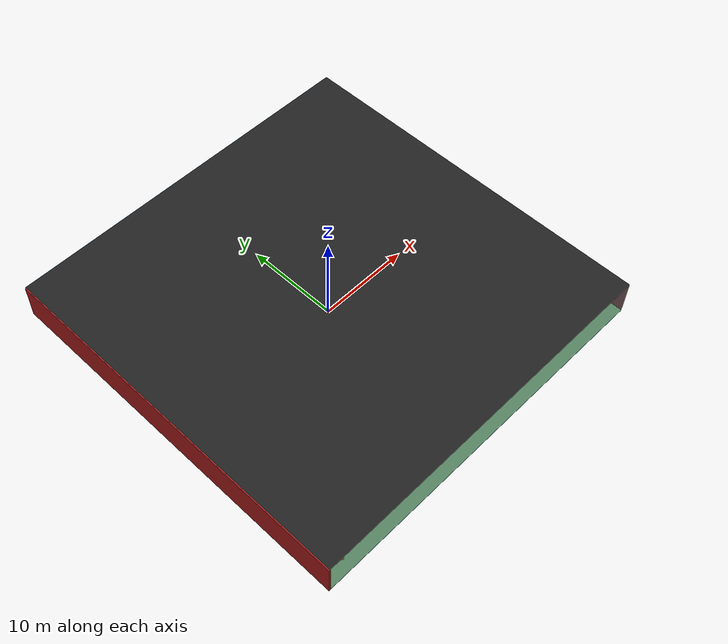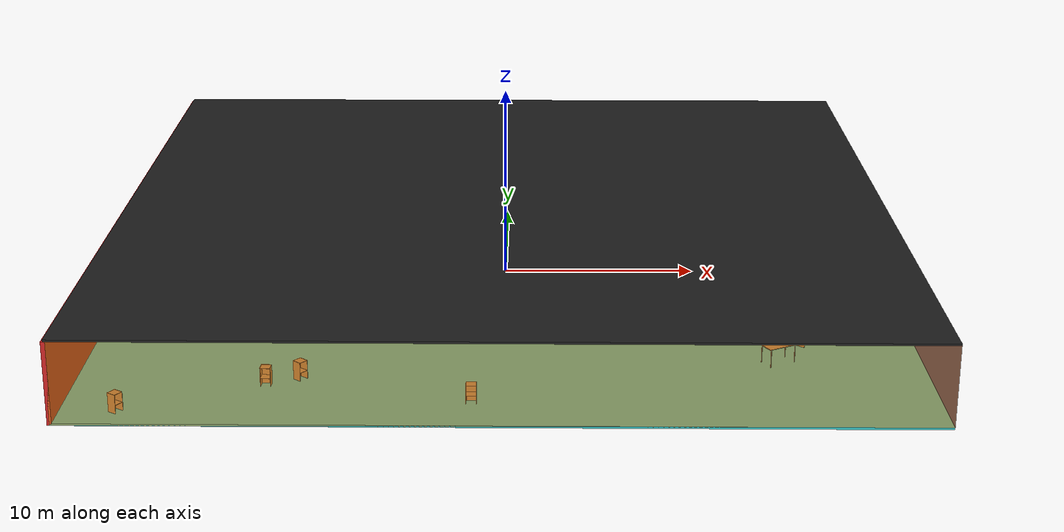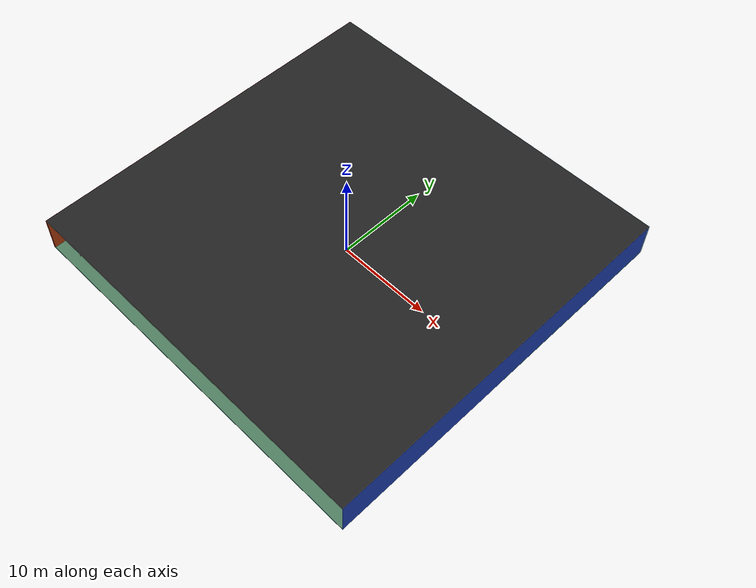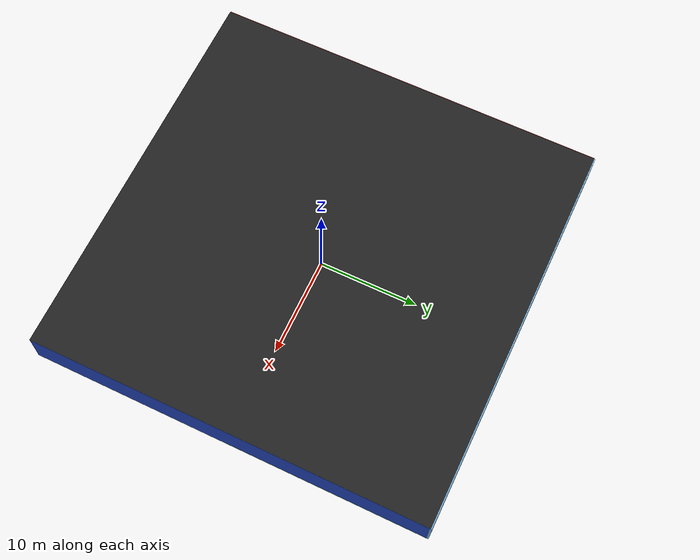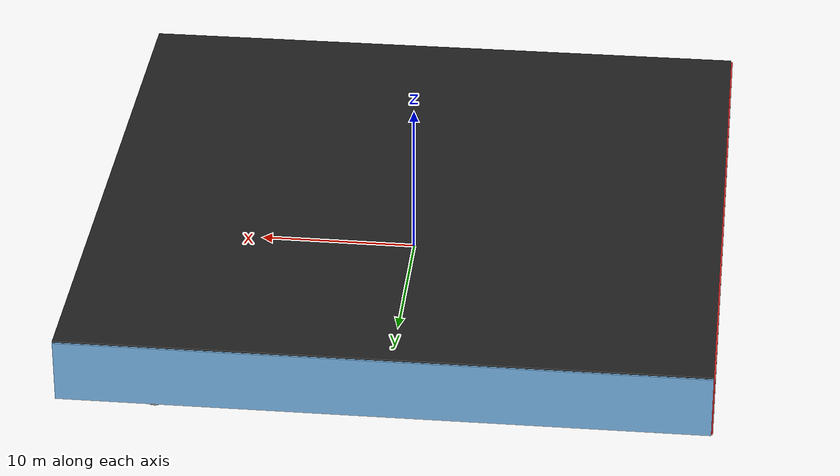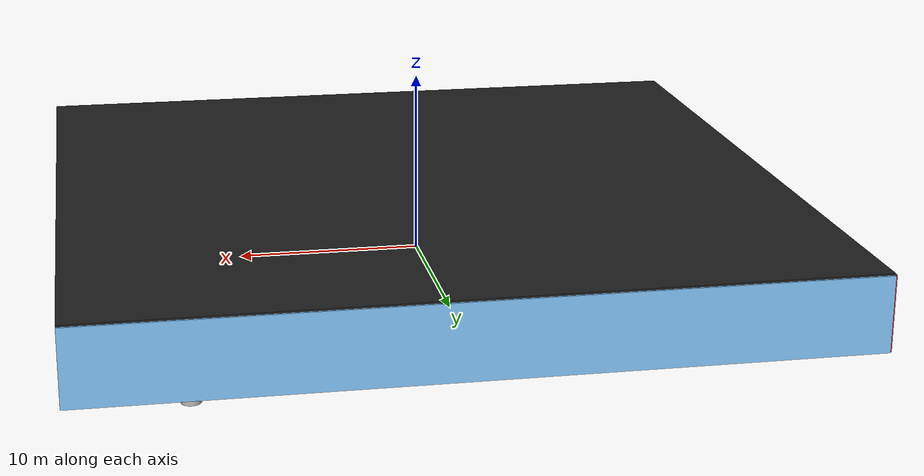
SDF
<sdf version="1.4">
 <world name="default">
  <physics type="ode">
   <max_step_size>0.001</max_step_size>
   <real_time_factor>1</real_time_factor>
   <real_time_update_rate>1000</real_time_update_rate>
   <gravity>0 0 -9.8</gravity>
  </physics>
  <scene><ambient>0.4 0.4 0.4 1</ambient><background>0.7 0.7 0.7 1</background><shadows>1</shadows></scene>
  <model name="Surrounding">
   <static>1</static>
   <link name="Ceiling">
    <collision name="Ceiling_Collision"><geometry><box><size>40 40 0.1</size></box></geometry></collision>
    <visual name="Ceiling_Visual">
     <geometry><box><size>40 40 0.1</size></box></geometry>
     <material>
      <script><uri>file://media/materials/scripts/gazebo.material</uri><name>Gazebo/Black</name></script>
     </material>
    </visual>
    <pose>0 0 4.05 0 0 0</pose>
   </link>
   <link name="Wall_South">
    <collision name="Wall_South_Collision">
     <geometry><box><size>40 0 4</size></box></geometry>
     <pose>0 0 2 0 -0 0</pose>
    </collision>
    <visual name="Wall_South_Visual">
     <pose>0 0 2 0 -0 0</pose>
     <geometry><box><size>40 0 4</size></box></geometry>
     <material>
      <script>
       <uri>file://media/materials/scripts/gazebo.material</uri>
       <name>Gazebo/OrangeTransparent</name>
      </script>
     </material>
    </visual>
    <velocity_decay><linear>0</linear><angular>0</angular></velocity_decay>
    <pose>0 -20 0 0 -0 0</pose>
   </link>
   <link name="Wall_East">
    <collision name="Wall_21_Collision">
     <geometry><box><size>40 0 4</size></box></geometry>
     <pose>0 0 2 0 -0 0</pose>
    </collision>
    <visual name="Wall_21_Visual">
     <pose>0 0 2 0 -0 0</pose>
     <geometry><box><size>40 0 4</size></box></geometry>
     <material>
      <script><uri>file://media/materials/scripts/gazebo.material</uri><name>Gazebo/Blue</name></script>
     </material>
    </visual>
    <velocity_decay><linear>0</linear><angular>0</angular></velocity_decay>
    <pose>20 0 0 0 -0 1.5708</pose>
   </link>
   <link name="Wall_North">
    <collision name="Wall_22_Collision">
     <geometry><box><size>40 0.2 4</size></box></geometry>
     <pose>0 0 2 0 -0 0</pose>
    </collision>
    <visual name="Wall_22_Visual">
     <pose>0 0 2 0 -0 0</pose>
     <geometry><box><size>40 0.2 4</size></box></geometry>
     <material>
      <script><uri>file://media/materials/scripts/gazebo.material</uri><name>Gazebo/SkyBlue</name></script>
     </material>
    </visual>
    <velocity_decay><linear>0</linear><angular>0</angular></velocity_decay>
    <pose>0 20 0 0 -0 0</pose>
   </link>
   <link name="Wall_West">
    <collision name="Wall_23_Collision">
     <geometry><box><size>40 0.2 4</size></box></geometry>
     <pose>0 0 2 0 -0 0</pose>
    </collision>
    <visual name="Wall_23_Visual">
     <pose>0 0 2 0 -0 0</pose>
     <geometry><box><size>40 0.2 4</size></box></geometry>
     <material>
      <script><uri>file://media/materials/scripts/gazebo.material</uri><name>Gazebo/Red</name></script>
     </material>
    </visual>
    <velocity_decay><linear>0</linear><angular>0</angular></velocity_decay>
    <pose>-20 0 0 0 0 -1.5708</pose>
   </link>
   <link name="Ground_link">
    <collision name="collision">
     <pose>0 0 .05 0 -0 0</pose>
     <geometry><box><size>40 40 0.1</size></box></geometry>
    </collision>
    <visual name="visual">
     <pose>0 0 .05 0 -0 0</pose>
     <geometry><box><size>40 40 0.1</size></box></geometry>
     <material>
      <script><uri>file://media/materials/scripts/gazebo.material</uri><name>Gazebo/TurquoiseGlow</name></script>
     </material>
    </visual>
   </link>
   <static>1</static>
  </model>
  <spherical_coordinates>
   <surface_model>EARTH_WGS84</surface_model>
   <latitude_deg>0</latitude_deg>
   <longitude_deg>0</longitude_deg>
   <elevation>0</elevation>
   <heading_deg>0</heading_deg>
  </spherical_coordinates>
  <light name="lightball_0" type="diffuse">
   <diffuse>0.8 0.8 0.8 1</diffuse>
   <specular>0.2 0.2 0.2 1</specular>
   <attenuation>
    <range>100</range>
    <constant>0.7</constant>
    <linear>0.01</linear>
    <quadratic>0.001</quadratic>
   </attenuation>
   <direction>-0.5 0.1 -0.9</direction>
   <pose>-7.37360779904 -14.8069246724 1.05130211604 0 0 0</pose>
  </light>
  <light name="lightball_1" type="diffuse">
   <diffuse>0.8 0.8 0.8 1</diffuse>
   <specular>0.2 0.2 0.2 1</specular>
   <attenuation>
    <range>100</range>
    <constant>0.7</constant>
    <linear>0.01</linear>
    <quadratic>0.001</quadratic>
   </attenuation>
   <direction>-0.5 0.1 -0.9</direction>
   <pose>-12.9122485202 14.7365901407 3.28462119586 0 0 0</pose>
  </light>
  <light name="lightball_2" type="diffuse">
   <diffuse>0.8 0.8 0.8 1</diffuse>
   <specular>0.2 0.2 0.2 1</specular>
   <attenuation>
    <range>100</range>
    <constant>0.7</constant>
    <linear>0.01</linear>
    <quadratic>0.001</quadratic>
   </attenuation>
   <direction>-0.5 0.1 -0.9</direction>
   <pose>-0.968602692245 -7.4371646657 0.774848436727 0 0 0</pose>
  </light>
  <light name="lightball_3" type="diffuse">
   <diffuse>0.8 0.8 0.8 1</diffuse>
   <specular>0.2 0.2 0.2 1</specular>
   <attenuation>
    <range>100</range>
    <constant>0.7</constant>
    <linear>0.01</linear>
    <quadratic>0.001</quadratic>
   </attenuation>
   <direction>-0.5 0.1 -0.9</direction>
   <pose>6.01474443425 10.5694232191 2.90389310937 0 0 0</pose>
  </light>
  <include><uri>model://cabinet</uri><pose>-17.3203647478 -18.6315951269 0 0 0 2.55468913757</pose></include>
  <include>
   <uri>model://robocup_3Dsim_goal</uri>
   <pose>-16.6141818485 -5.93617611458 0 0 0 2.32086494351</pose>
  </include>
  <include>
   <uri>model://textured_shapes</uri>
   <pose>-17.1376493884 -1.49549775612 0 0 0 1.88679086922</pose>
  </include>
  <include>
   <uri>model://construction_cone</uri>
   <pose>-17.126486633 9.36765085869 0 0 0 2.3192174171</pose>
  </include>
  <include>
   <uri>model://construction_cone</uri>
   <pose>-13.9096086131 3.56133516165 0 0 0 0.729571956496</pose>
  </include>
  <include><uri>model://table</uri><pose>-14.579535257 14.7742083531 0 0 0 1.01916735722</pose></include>
  <include><uri>model://cabinet</uri><pose>-14.4227480949 17.6633511936 0 0 0 0.974568163189</pose></include>
  <include><uri>model://cabinet</uri><pose>-10.9395383184 -15.6321338602 0 0 0 1.51415688705</pose></include>
  <include>
   <uri>model://construction_cone</uri>
   <pose>-11.9966355644 -8.51912421701 0 0 0 2.53678635254</pose>
  </include>
  <include>
   <uri>model://robocup_3Dsim_goal</uri>
   <pose>-11.3067879156 17.630470525 0 0 0 0.624660460898</pose>
  </include>
  <include><uri>model://cabinet</uri><pose>-9.42484842426 -14.9151082692 0 0 0 2.43088654802</pose></include>
  <include>
   <uri>model://textured_shapes</uri>
   <pose>-7.40607181238 3.15152573874 0 0 0 2.67102805147</pose>
  </include>
  <include>
   <uri>model://construction_cone</uri>
   <pose>-8.77313383352 13.5190726211 0 0 0 0.89894434638</pose>
  </include>
  <include><uri>model://cabinet</uri><pose>-6.69247542318 -6.01658055194 0 0 0 2.45004067241</pose></include>
  <include>
   <uri>model://textured_shapes</uri>
   <pose>-6.09629135035 13.1835622689 0 0 0 1.95979397175</pose>
  </include>
  <include><uri>model://cabinet</uri><pose>-1.38719816296 -17.5036488313 0 0 0 1.57475496286</pose></include>
  <include><uri>model://cabinet</uri><pose>-1.87918873671 -6.40017257881 0 0 0 0.00747910345266</pose></include>
  <include>
   <uri>model://construction_cone</uri>
   <pose>-2.33491644066 2.51540026175 0 0 0 2.40285070728</pose>
  </include>
  <include>
   <uri>model://textured_shapes</uri>
   <pose>0.477571651393 -5.32158071444 0 0 0 1.54304032388</pose>
  </include>
  <include>
   <uri>model://construction_cone</uri>
   <pose>0.317637745585 15.7214159738 0 0 0 0.160517197533</pose>
  </include>
  <include><uri>model://table</uri><pose>4.61007001238 1.51499437762 0 0 0 0.382547719175</pose></include>
  <include><uri>model://cabinet</uri><pose>6.38346628308 12.4433080886 0 0 0 1.25717364241</pose></include>
  <include><uri>model://table</uri><pose>6.31168099356 14.5557807665 0 0 0 1.83943554692</pose></include>
  <include>
   <uri>model://construction_cone</uri>
   <pose>10.4755022529 5.81071769715 0 0 0 0.974319184499</pose>
  </include>
  <include><uri>model://table</uri><pose>13.1003807481 -12.6974810166 0 0 0 0.49916810291</pose></include>
  <include>
   <uri>model://textured_shapes</uri>
   <pose>12.7726365933 9.51397561274 0 0 0 0.215086122803</pose>
  </include>
  <include><uri>model://cabinet</uri><pose>14.5776686892 -10.5582220673 0 0 0 2.49196172355</pose></include>
  <include><uri>model://cabinet</uri><pose>14.6317538802 -5.17223121267 0 0 0 2.29745273413</pose></include>
  <include>
   <uri>model://construction_cone</uri>
   <pose>14.3328059201 9.50264403015 0 0 0 2.74170629094</pose>
  </include>
  <include>
   <uri>model://textured_shapes</uri>
   <pose>14.5891906577 17.6098078342 0 0 0 0.404254249626</pose>
  </include>
 </world>
</sdf>

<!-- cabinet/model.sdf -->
<sdf version="1.5">
  <model name="cabinet">
    <static>true</static>
    <link name="cabinet_bottom_plate">
      <inertial>
        <pose>0 0 -1 0 0 0</pose>
        <inertia>
          <ixx>2.050000</ixx>
          <ixy>0</ixy>
          <ixz>0</ixz>
          <iyy>2.050000</iyy>
          <iyz>0</iyz>
          <izz>2.050000</izz>
        </inertia>
        <mass>25.000000</mass>
      </inertial>
      <collision name="cabinet_bottom_plate_geom">
        <pose>0 0 0.010000 0 0 0</pose>
        <geometry>
          <box>
            <size>0.450000 0.450000 0.020000</size>
          </box>
        </geometry>
      </collision>
      <visual name="cabinet_bottom_plate_geom_visual">
        <pose>0 0 0.010000 0 0 0</pose>
        <geometry>
          <box>
            <size>0.450000 0.450000 0.020000</size>
          </box>
        </geometry>
        <material>
          <script>
            <uri>model://media/materials/scripts/gazebo.material</uri>
            <name>Gazebo/Wood</name>
          </script>
        </material>
      </visual>
      <collision name="cabinet_bottom_plate_geom_cabinet_back_plate">
        <pose>0.235000 0 0.510000 0 0 0</pose>
        <geometry>
          <box>
            <size>0.020000 0.450000 1.020000</size>
          </box>
        </geometry>
      </collision>
      <visual name="cabinet_bottom_plate_geom_cabinet_back_plate_visual">
        <pose>0.235000 0 0.510000 0 0 0</pose>
        <geometry>
          <box>
            <size>0.020000 0.450000 1.020000</size>
          </box>
        </geometry>
        <material>
          <script>
            <uri>model://media/materials/scripts/gazebo.material</uri>
            <name>Gazebo/Wood</name>
          </script>
        </material>
      </visual>
      <collision name="cabinet_bottom_plate_geom_cabinet_left_plate">
        <pose>0 0.235000 0.510000 0 0 0</pose>
        <geometry>
          <box>
            <size>0.450000 0.020000 1.020000</size>
          </box>
        </geometry>
      </collision>
      <visual name="cabinet_bottom_plate_geom_cabinet_left_plate_visual">
        <pose>0 0.235000 0.510000 0 0 0</pose>
        <geometry>
          <box>
            <size>0.450000 0.020000 1.020000</size>
          </box>
        </geometry>
        <material>
          <script>
            <uri>model://media/materials/scripts/gazebo.material</uri>
            <name>Gazebo/Wood</name>
          </script>
        </material>
      </visual>
      <collision name="cabinet_bottom_plate_geom_cabinet_middle_plate">
        <pose>0 0 0.510000 0 0 0</pose>
        <geometry>
          <box>
            <size>0.450000 0.450000 0.020000</size>
          </box>
        </geometry>
      </collision>
      <visual name="cabinet_bottom_plate_geom_cabinet_middle_plate_visual">
        <pose>0 0 0.510000 0 0 0</pose>
        <geometry>
          <box>
            <size>0.450000 0.450000 0.020000</size>
          </box>
        </geometry>
        <material>
          <script>
            <uri>model://media/materials/scripts/gazebo.material</uri>
            <name>Gazebo/Wood</name>
          </script>
        </material>
      </visual>
      <collision name="cabinet_bottom_plate_geom_cabinet_right_plate">
        <pose>0 -0.235000 0.510000 0 0 0</pose>
        <geometry>
          <box>
            <size>0.450000 0.020000 1.020000</size>
          </box>
        </geometry>
      </collision>
      <visual name="cabinet_bottom_plate_geom_cabinet_right_plate_visual">
        <pose>0 -0.235000 0.510000 0 0 0</pose>
        <geometry>
          <box>
            <size>0.450000 0.020000 1.020000</size>
          </box>
        </geometry>
        <material>
          <script>
            <uri>model://media/materials/scripts/gazebo.material</uri>
            <name>Gazebo/Wood</name>
          </script>
        </material>
      </visual>
      <collision name="cabinet_bottom_plate_geom_cabinet_top_plate">
        <pose>0 0 1.010000 0 0 0</pose>
        <geometry>
          <box>
            <size>0.450000 0.450000 0.020000</size>
          </box>
        </geometry>
      </collision>
      <visual name="cabinet_bottom_plate_geom_cabinet_top_plate_visual">
        <pose>0 0 1.010000 0 0 0</pose>
        <geometry>
          <box>
            <size>0.450000 0.450000 0.020000</size>
          </box>
        </geometry>
        <material>
          <script>
            <uri>model://media/materials/scripts/gazebo.material</uri>
            <name>Gazebo/Wood</name>
          </script>
        </material>
      </visual>
    </link>
  </model>
</sdf>

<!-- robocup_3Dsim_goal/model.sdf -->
<sdf version="1.5">
  <model name="robocup_3d_goal">
    <static>true</static>
    <link name="left_post">
      <pose>0 1.05 0.45 0 0 0</pose>
      <collision name="collision">
        <geometry>
          <cylinder>
            <radius>0.05</radius>
            <length>0.9</length>
          </cylinder>
        </geometry>
      </collision>
      <visual name="visual">
        <geometry>
          <cylinder>
            <radius>0.05</radius>
            <length>0.9</length>
          </cylinder>
        </geometry>
        <material>
          <script>
            <uri>file://media/materials/scripts/gazebo.material</uri>
            <name>Gazebo/ZincYellow</name>
          </script>
        </material>
      </visual>
    </link>
    <link name="left_support_horiz_lower">
      <pose>0.30 1.05 0.01 0 0 0</pose>
      <collision name="collision">
        <geometry>
          <box>
            <size>0.50 0.02 0.02</size>
          </box>
        </geometry>
      </collision>
      <visual name="visual">
        <geometry>
          <box>
            <size>0.50 0.02 0.02</size>
          </box>
        </geometry>
        <material>
          <script>
            <uri>file://media/materials/scripts/gazebo.material</uri>
            <name>Gazebo/White</name>
          </script>
        </material>
      </visual>
    </link>
    <link name="left_support_horiz_upper">
      <pose>0.30 1.05 0.79 0 0 0</pose>
      <collision name="collision">
        <geometry>
          <box>
            <size>0.50 0.02 0.02</size>
          </box>
        </geometry>
      </collision>
      <visual name="visual">
        <geometry>
          <box>
            <size>0.50 0.02 0.02</size>
          </box>
        </geometry>
        <material>
          <script>
            <uri>file://media/materials/scripts/gazebo.material</uri>
            <name>Gazebo/White</name>
          </script>
        </material>
      </visual>
    </link>
    <link name="left_support_vertical">
      <pose>0.56 1.05 0.4 0 1.5708 0</pose>
      <collision name="collision">
        <geometry>
          <box>
            <size>0.80 0.02 0.02</size>
          </box>
        </geometry>
      </collision>
      <visual name="visual">
        <geometry>
          <box>
            <size>0.80 0.02 0.02</size>
          </box>
        </geometry>
        <material>
          <script>
            <uri>file://media/materials/scripts/gazebo.material</uri>
            <name>Gazebo/White</name>
          </script>
        </material>
      </visual>
    </link>
    <link name="right_support_horiz_lower">
      <pose>0.30 -1.05 0.01 0 0 0</pose>
      <collision name="collision">
        <geometry>
          <box>
            <size>0.50 0.02 0.02</size>
          </box>
        </geometry>
      </collision>
      <visual name="visual">
        <geometry>
          <box>
            <size>0.50 0.02 0.02</size>
          </box>
        </geometry>
        <material>
          <script>
            <uri>file://media/materials/scripts/gazebo.material</uri>
            <name>Gazebo/White</name>
          </script>
        </material>
      </visual>
    </link>
    <link name="right_support_horiz_upper">
      <pose>0.30 -1.05 0.79 0 0 0</pose>
      <collision name="collision">
        <geometry>
          <box>
            <size>0.50 0.02 0.02</size>
          </box>
        </geometry>
      </collision>
      <visual name="visual">
        <geometry>
          <box>
            <size>0.50 0.02 0.02</size>
          </box>
        </geometry>
        <material>
          <script>
            <uri>file://media/materials/scripts/gazebo.material</uri>
            <name>Gazebo/White</name>
          </script>
        </material>
      </visual>
    </link>
    <link name="right_support_vertical">
      <pose>0.56 -1.05 0.4 0 1.5708 0</pose>
      <collision name="collision">
        <geometry>
          <box>
            <size>0.80 0.02 0.02</size>
          </box>
        </geometry>
      </collision>
      <visual name="visual">
        <geometry>
          <box>
            <size>0.80 0.02 0.02</size>
          </box>
        </geometry>
        <material>
          <script>
            <uri>file://media/materials/scripts/gazebo.material</uri>
            <name>Gazebo/White</name>
          </script>
        </material>
      </visual>
    </link>
    <link name="center_support_horiz_lower">
      <pose>0.56 0 0.01 0 1.5708 0</pose>
      <collision name="collision">
        <geometry>
          <box>
            <size>0.02 2.08 0.02</size>
          </box>
        </geometry>
      </collision>
      <visual name="visual">
        <geometry>
          <box>
            <size>0.02 2.08 0.02</size>
          </box>
        </geometry>
        <material>
          <script>
            <uri>file://media/materials/scripts/gazebo.material</uri>
            <name>Gazebo/White</name>
          </script>
        </material>
      </visual>
    </link>
    <link name="center_support_horiz_upper">
      <pose>0.56 0 0.79 0 1.5708 0</pose>
      <collision name="collision">
        <geometry>
          <box>
            <size>0.02 2.08 0.02</size>
          </box>
        </geometry>
      </collision>
      <visual name="visual">
        <geometry>
          <box>
            <size>0.02 2.08 0.02</size>
          </box>
        </geometry>
        <material>
          <script>
            <uri>file://media/materials/scripts/gazebo.material</uri>
            <name>Gazebo/White</name>
          </script>
        </material>
      </visual>
    </link>
    <link name="right_post">
      <pose>0 -1.05 0.45 0 0 0</pose>
      <collision name="collision">
        <geometry>
          <cylinder>
            <radius>0.05</radius>
            <length>0.9</length>
          </cylinder>
        </geometry>
      </collision>
      <visual name="visual">
        <geometry>
          <cylinder>
            <radius>0.05</radius>
            <length>0.9</length>
          </cylinder>
        </geometry>
        <material>
          <script>
            <uri>file://media/materials/scripts/gazebo.material</uri>
            <name>Gazebo/ZincYellow</name>
          </script>
        </material>
      </visual>
    </link>
    <link name="crossbar">
      <pose>0 0 0.85 1.57 1.57 0</pose>
      <collision name="collision">
        <geometry>
          <cylinder>
            <radius>0.05</radius>
            <length>2.0</length>
          </cylinder>
        </geometry>
      </collision>
      <visual name="visual">
        <geometry>
          <cylinder>
            <radius>0.05</radius>
            <length>2.0</length>
          </cylinder>
        </geometry>
        <material>
          <script>
            <uri>file://media/materials/scripts/gazebo.material</uri>
            <name>Gazebo/ZincYellow</name>
          </script>
        </material>
      </visual>
    </link>
    <link name="center_net">
      <pose>0.56 0 0.40 0 0 0</pose>
      <collision name="collision">
        <geometry>
          <box>
            <size>0.01 2.1 0.80</size>
          </box>
        </geometry>
      </collision>
      <visual name="visual">
        <geometry>
          <box>
            <size>0.01 2.1 0.80</size>
          </box>
        </geometry>
        <material>
          <script>
            <uri>model://../model_source/models/robocup09_spl_field/materials/scripts/</uri>
            <uri>model://../model_source/models/robocup09_spl_field/materials/textures/</uri>
            <name>RoboCup/Net</name>
          </script>
        </material>
      </visual>
    </link>
    <link name="left_net">
      <pose>0.30 1.05 0.40 0 0 0</pose>
      <collision name="collision">
        <geometry>
          <box>
            <size>0.50 0.01 0.76</size>
          </box>
        </geometry>
      </collision>
      <visual name="visual">
        <geometry>
          <box>
            <size>0.50 0.01 0.76</size>
          </box>
        </geometry>
        <material>
          <script>
            <uri>model://../model_source/models/robocup09_spl_field/materials/scripts/</uri>
            <uri>model://../model_source/models/robocup09_spl_field/materials/textures/</uri>
            <name>RoboCup/Net</name>
          </script>
        </material>
      </visual>
    </link>
    <link name="right_net">
      <pose>0.30 -1.05 0.40 0 0 0</pose>
      <collision name="collision">
        <geometry>
          <box>
            <size>0.50 0.01 0.76</size>
          </box>
        </geometry>
      </collision>
      <visual name="visual">
        <geometry>
          <box>
            <size>0.50 0.01 0.76</size>
          </box>
        </geometry>
        <material>
          <script>
            <uri>model://../model_source/models/robocup09_spl_field/materials/scripts/</uri>
            <uri>model://../model_source/models/robocup09_spl_field/materials/textures/</uri>
            <name>RoboCup/Net</name>
          </script>
        </material>
      </visual>
    </link>
  </model>
</sdf>

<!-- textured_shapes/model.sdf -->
<sdf version="1.6">
  <model name="textured_shapes">
    <pose>0 0 0.5 0 0 0</pose>
    <link name="box">
      <pose>0 -1.5 0 0 0 0</pose>
      <collision name="collision">
        <geometry>
          <box>
            <size>1 1 1</size>
          </box>
        </geometry>
      </collision>
      <visual name="visual">
        <geometry>
          <box>
            <size>1 1 1</size>
          </box>
        </geometry>
        <material>
          <script>
            <uri>model://../model_source/models/textured_shapes/materials/scripts</uri>
            <uri>model://../model_source/models/textured_shapes/materials/textures</uri>
            <name>TexturedShape/Squares</name>
          </script>
        </material>
      </visual>
    </link>
    <link name="sphere">
      <collision name="collision">
        <geometry>
          <sphere>
            <radius>0.5</radius>
          </sphere>
        </geometry>
      </collision>
      <visual name="visual">
        <geometry>
          <sphere>
            <radius>0.5</radius>
          </sphere>
        </geometry>
        <material>
          <script>
            <uri>model://../model_source/models/textured_shapes/materials/scripts</uri>
            <uri>model://../model_source/models/textured_shapes/materials/textures</uri>
            <name>TexturedShape/Squares</name>
          </script>
        </material>
      </visual>
    </link>
    <link name="cylinder">
      <pose>0 1.5 0 0 0 0</pose>
      <collision name="collision">
        <geometry>
          <cylinder>
            <radius>0.5</radius>
            <length>1</length>
          </cylinder>
        </geometry>
      </collision>
      <visual name="visual">
        <geometry>
          <cylinder>
            <radius>0.5</radius>
            <length>1</length>
          </cylinder>
        </geometry>
        <material>
          <script>
            <uri>model://../model_source/models/textured_shapes/materials/scripts</uri>
            <uri>model://../model_source/models/textured_shapes/materials/textures</uri>
            <name>TexturedShape/Squares</name>
          </script>
        </material>
      </visual>
    </link>
  </model>
</sdf>

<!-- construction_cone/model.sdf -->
<sdf version="1.5">
  <model name="Construction Cone">
    <link name="link">
      <collision name="collision">
        <geometry>
          <mesh>
            <scale>10 10 10</scale>
            <uri>file://isr-testbed/construction_cone/meshes/construction_cone.dae</uri>
          </mesh>
        </geometry>
      </collision>
      <visual name="visual">
        <geometry>
          <mesh>
            <scale>10 10 10</scale>
            <uri>file://isr-testbed/construction_cone/meshes/construction_cone.dae</uri>
          </mesh>
        </geometry>
      </visual>
    </link>
  </model>
</sdf>

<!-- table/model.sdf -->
<sdf version="1.5">
  <model name="table">
    <static>true</static>
    <link name="link">
      <collision name="surface">
        <pose>0 0 1.0 0 0 0</pose>
        <geometry>
          <box>
            <size>1.5 0.8 0.03</size>
          </box>
        </geometry>
        <surface>
          <friction>
            <ode>
              <mu>0.6</mu>
              <mu2>0.6</mu2>
            </ode>
          </friction>
        </surface>
      </collision>
      <visual name="visual1">
        <pose>0 0 1.0 0 0 0</pose>
        <geometry>
          <box>
            <size>1.5 0.8 0.03</size>
          </box>
        </geometry>
        <material>
          <script>
            <uri>model://media/materials/scripts/gazebo.material</uri>
            <name>Gazebo/Wood</name>
          </script>
        </material>
      </visual>
      <collision name="front_left_leg">
        <pose>0.68 0.38 0.5 0 0 0</pose>
        <geometry>
          <cylinder>
            <radius>0.02</radius>
            <length>1.0</length>
          </cylinder>
        </geometry>
      </collision>
      <visual name="front_left_leg">
        <pose>0.68 0.38 0.5 0 0 0</pose>
        <geometry>
          <cylinder>
            <radius>0.02</radius>
            <length>1.0</length>
          </cylinder>
        </geometry>
        <material>
          <script>
            <uri>model://media/materials/scripts/gazebo.material</uri>
            <name>Gazebo/Grey</name>
          </script>
        </material>
      </visual>
      <collision name="front_right_leg">
        <pose>0.68 -0.38 0.5 0 0 0</pose>
        <geometry>
          <cylinder>
            <radius>0.02</radius>
            <length>1.0</length>
          </cylinder>
        </geometry>
      </collision>
      <visual name="front_right_leg">
        <pose>0.68 -0.38 0.5 0 0 0</pose>
        <geometry>
          <cylinder>
            <radius>0.02</radius>
            <length>1.0</length>
          </cylinder>
        </geometry>
        <material>
          <script>
            <uri>model://media/materials/scripts/gazebo.material</uri>
            <name>Gazebo/Grey</name>
          </script>
        </material>
      </visual>
      <collision name="back_right_leg">
        <pose>-0.68 -0.38 0.5 0 0 0</pose>
        <geometry>
          <cylinder>
            <radius>0.02</radius>
            <length>1.0</length>
          </cylinder>
        </geometry>
      </collision>
      <visual name="back_right_leg">
        <pose>-0.68 -0.38 0.5 0 0 0</pose>
        <geometry>
          <cylinder>
            <radius>0.02</radius>
            <length>1.0</length>
          </cylinder>
        </geometry>
        <material>
          <script>
            <uri>model://media/materials/scripts/gazebo.material</uri>
            <name>Gazebo/Grey</name>
          </script>
        </material>
      </visual>
      <collision name="back_left_leg">
        <pose>-0.68 0.38 0.5 0 0 0</pose>
        <geometry>
          <cylinder>
            <radius>0.02</radius>
            <length>1.0</length>
          </cylinder>
        </geometry>
      </collision>
      <visual name="back_left_leg">
        <pose>-0.68 0.38 0.5 0 0 0</pose>
        <geometry>
          <cylinder>
            <radius>0.02</radius>
            <length>1.0</length>
          </cylinder>
        </geometry>
        <material>
          <script>
            <uri>model://media/materials/scripts/gazebo.material</uri>
            <name>Gazebo/Grey</name>
          </script>
        </material>
      </visual>
    </link>
  </model>
</sdf>
